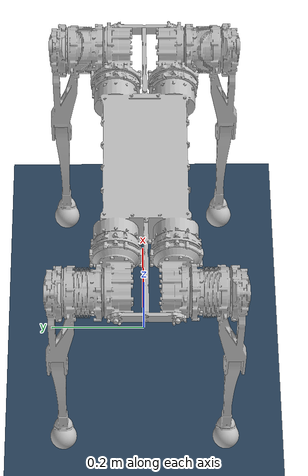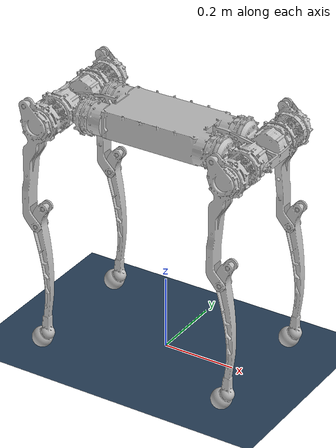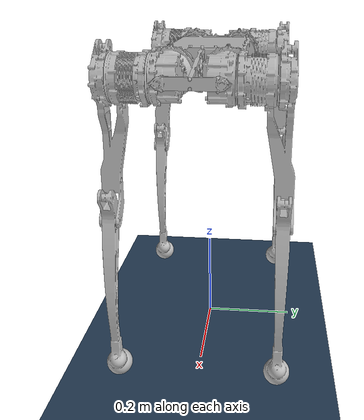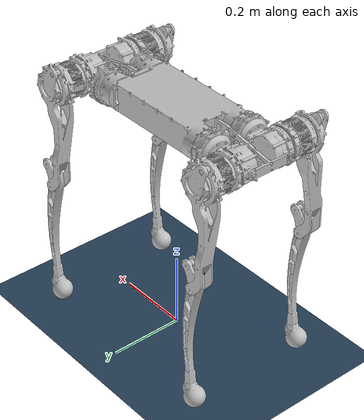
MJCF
<mujoco model="QuadIP">
  <compiler angle="radian" meshdir="meshes/" autolimits="true"/>
  <option timestep="0.001" tolerance="1e-06" cone="elliptic" jacobian="sparse" solver="CG" iterations="30"/>
  <default/>
  <asset>
    <texture type="skybox" builtin="gradient" rgb1=".3 .5 .7" rgb2="0 0 0" width="512" height="512"/>
    <texture name="grid" type="2d" builtin="checker" width="512" height="512" rgb1=".1 .2 .3" rgb2=".2 .3 .4"/>
    <material name="grid" texture="grid" texrepeat="1 1" texuniform="true" reflectance=".2"/>
  </asset>
  <asset>
    <mesh name="Base" file="Base.STL"/>
    <mesh name="FL_HP" file="FL_HP.STL"/>
    <mesh name="FL_Thigh" file="FL_Thigh.STL"/>
    <mesh name="FL_Calf" file="FL_Calf.STL"/>
    <mesh name="BL_HP" file="BL_HP.STL"/>
    <mesh name="BL_Thigh" file="BL_Thigh.STL"/>
    <mesh name="BL_Calf" file="BL_Calf.STL"/>
    <mesh name="FR_HP" file="FR_HP.STL"/>
    <mesh name="FR_Thigh" file="FR_Thigh.STL"/>
    <mesh name="FR_Calf" file="FR_Calf.STL"/>
    <mesh name="BR_HP" file="BR_HP.STL"/>
    <mesh name="BR_Thigh" file="BR_Thigh.STL"/>
    <mesh name="BR_Calf" file="BR_Calf.STL"/>
  </asset>

 <visual>
    <map force="0.1" zfar="30"/>
    <rgba haze="0.15 0.25 0.35 1"/>
    <global offwidth="2560" offheight="1440" elevation="-20" azimuth="120"/>
  </visual>

  <worldbody>
    <geom name="ground" size="10 10 .05" type="plane" material="grid" condim="3"/>
    <light dir=".2 1 -.4" diffuse=".8 .8 .8" specular="0.3 0.3 0.3" pos="-2 -10 4" cutoff="35"/>
    <light dir="-.2 1 -.4" diffuse=".8 .8 .8" specular="0.3 0.3 0.3" pos="2 -10 4" cutoff="35"/>

    <body name="Base" pos="0 0 0.642" gravcomp="0">
      <freejoint name="Base"/>
      <inertial pos="0.00407 -0.00053 -0.00159" quat="0 0.707107 0 0.707107" mass="8.29295" diaginertia="0.20885 0.1908 0.02567"/>
      <geom type="mesh" rgba="0.75294 0.75294 0.75294 1" mesh="Base"/>
      <body name="FL_HP" pos="0.27 0.055 0" gravcomp="0">
        <inertial pos="-0.00958 0.00664 0.00176" quat="0 0.707107 0 0.707107" mass="1.2615" diaginertia="0.00176 0.00166 0.00108"/>
        <joint name="1_FL_Roll" pos="0 0 0" axis="1 0 0" range="-1 1"/>
        <geom type="mesh" rgba="0.75294 0.75294 0.75294 1" mesh="FL_HP"/>
        <body name="FL_Thigh" pos="0 0.1142 0" gravcomp="0">
          <inertial pos="-0.0055 -0.02031 -0.03239" mass="2.3269" diaginertia="0.02004 0.01871 0.00366"/>
          <joint name="1_FL_Pitch" pos="0 0 0" axis="0 1 0" range="-3.14 3.14"/>
          <geom type="mesh" rgba="0.75294 0.75294 0.75294 1" mesh="FL_Thigh"/>
          <body name="FL_Calf" pos="0 0 -0.28" gravcomp="0">
            <inertial pos="0.01134 6e-05 -0.15434" quat="0.707107 0 0 0.707107" mass="0.56128" diaginertia="0.02632 0.0262 0.0002"/>
            <joint name="1_FL_Knee" pos="0 0 0" axis="0 1 0" range="-3.14 -0.17"/>
            <geom type="mesh" rgba="0.75294 0.75294 0.75294 1" mesh="FL_Calf"/>
          </body>
        </body>
      </body>
      <body name="BL_HP" pos="-0.27 0.055 0" gravcomp="0">
        <inertial pos="0.0096 0.0066 0.00016" quat="0 0.707107 0 0.707107" mass="1.259" diaginertia="0.00176 0.00165 0.00108"/>
        <joint name="2_BL_Roll" pos="0 0 0" axis="1 0 0" range="-1 1"/>
        <geom type="mesh" rgba="0.75294 0.75294 0.75294 1" mesh="BL_HP"/>
        <body name="BL_Thigh" pos="0 0.1142 0" gravcomp="0">
          <inertial pos="-0.0055 -0.02031 -0.03239" mass="2.3269" diaginertia="0.02004 0.01871 0.00366"/>
          <joint name="2_BL_Pitch" pos="0 0 0" axis="0 1 0" range="-3.14 3.14"/>
          <geom type="mesh" rgba="0.75294 0.75294 0.75294 1" mesh="BL_Thigh"/>
          <body name="BL_Calf" pos="0 0 -0.28" gravcomp="0">
            <inertial pos="0.01134 6e-05 -0.15434" quat="0.707107 0 0 0.707107" mass="0.56128" diaginertia="0.02632 0.0262 0.0002"/>
            <joint name="2_BL_Knee" pos="0 0 0" axis="0 1 0" range="-3.14 -0.17"/>
            <geom type="mesh" rgba="0.75294 0.75294 0.75294 1" mesh="BL_Calf"/>
          </body>
        </body>
      </body>
      <body name="FR_HP" pos="0.27 -0.055 0" gravcomp="0">
        <inertial pos="-0.0096 -0.0066 0.00016" quat="0 0.707107 0 0.707107" mass="1.259" diaginertia="0.00176 0.00165 0.00108"/>
        <joint name="3_FR_Roll" pos="0 0 0" axis="1 0 0" range="-1 1"/>
        <geom type="mesh" rgba="0.75294 0.75294 0.75294 1" mesh="FR_HP"/>
        <body name="FR_Thigh" pos="0 -0.1142 0" gravcomp="0">
          <inertial pos="-0.0055 0.02031 -0.03246" mass="2.32853" diaginertia="0.02004 0.01872 0.00366"/>
          <joint name="3_FR_Pitch" pos="0 0 0" axis="0 1 0" range="-3.14 3.14"/>
          <geom type="mesh" rgba="0.75294 0.75294 0.75294 1" mesh="FR_Thigh"/>
          <body name="FR_Calf" pos="0 0 -0.28" gravcomp="0">
            <inertial pos="0.01134 6e-05 -0.15434" quat="0.707107 0 0 0.707107" mass="0.56128" diaginertia="0.02632 0.0262 0.0002"/>
            <joint name="3_FR_Knee" pos="0 0 0" axis="0 1 0" range="-3.14 -0.17"/>
            <geom type="mesh" rgba="0.75294 0.75294 0.75294 1" mesh="FR_Calf"/>
          </body>
        </body>
      </body>
      <body name="BR_HP" pos="-0.27 -0.055 0" gravcomp="0">
        <inertial pos="0.00958 -0.00664 -5e-05" quat="0 0.707107 0 0.707107" mass="1.2615" diaginertia="0.00176 0.00166 0.00108"/>
        <joint name="4_BR_Roll" pos="0 0 0" axis="1 0 0" range="-1 1"/>
        <geom type="mesh" rgba="0.75294 0.75294 0.75294 1" mesh="BR_HP"/>
        <body name="BR_Thigh" pos="0 -0.1142 0" gravcomp="0">
          <inertial pos="-0.0055 0.02031 -0.03246" mass="2.32853" diaginertia="0.02004 0.01872 0.00366"/>
          <joint name="4_BR_Pitch" pos="0 0 0" axis="0 1 0" range="-3.14 3.14"/>
          <geom type="mesh" rgba="0.75294 0.75294 0.75294 1" mesh="BR_Thigh"/>
          <body name="BR_Calf" pos="0 0 -0.28" gravcomp="0">
            <inertial pos="0.01134 6e-05 -0.15434" quat="0.707107 0 0 0.707107" mass="0.56128" diaginertia="0.02632 0.0262 0.0002"/>
            <joint name="4_BR_Knee" pos="0 0 0" axis="0 1 0" range="-3.14 -0.17"/>
            <geom type="mesh" rgba="0.75294 0.75294 0.75294 1" mesh="BR_Calf"/>
          </body>
        </body>
      </body>
    </body>
  </worldbody>

  <contact>
    <exclude name="FL_1" body1="Base" body2="FL_HP"/>
    <exclude name="FL_2" body1="Base" body2="FL_Thigh"/>
    <exclude name="FL_3" body1="Base" body2="FL_Calf"/>
    <exclude name="FL_4" body1="FL_Thigh" body2="FL_Calf"/>

    <exclude name="BL_1" body1="Base" body2="BL_HP"/>
    <exclude name="BL_2" body1="Base" body2="BL_Thigh"/>
    <exclude name="BL_3" body1="Base" body2="BL_Calf"/>
    <exclude name="BL_4" body1="BL_Thigh" body2="BL_Calf"/>

    <exclude name="FR_1" body1="Base" body2="FR_HP"/>
    <exclude name="FR_2" body1="Base" body2="FR_Thigh"/>
    <exclude name="FR_3" body1="Base" body2="FL_Calf"/>
    <exclude name="FR_4" body1="FR_Thigh" body2="FR_Calf"/>

    <exclude name="BR_1" body1="Base" body2="BR_HP"/>
    <exclude name="BR_2" body1="Base" body2="BR_Thigh"/>
    <exclude name="BR_3" body1="Base" body2="FL_Calf"/>
    <exclude name="BR_4" body1="BR_Thigh" body2="BR_Calf"/>
  </contact>

  <actuator>
    <motor name="FL_Roll" gear="50" joint="1_FL_Roll" forcerange="-1.0 1.0"/>
    <motor name="FL_Pitch" gear="50" joint="1_FL_Pitch" forcerange="-1.0 1.0"/>
    <motor name="FL_Knee" gear="50" joint="1_FL_Knee" forcerange="-1.0 1.0"/>

    <motor name="BL_Roll" gear="50" joint="2_BL_Roll" forcerange="-1.0 1.0"/>
    <motor name="BL_Pitch" gear="50" joint="2_BL_Pitch" forcerange="-1.0 1.0"/>
    <motor name="BL_Knee" gear="50" joint="2_BL_Knee" forcerange="-1.0 1.0"/>

    <motor name="FR_Roll" gear="50" joint="3_FR_Roll" forcerange="-1.0 1.0"/>
    <motor name="FR_Pitch" gear="50" joint="3_FR_Pitch" forcerange="-1.0 1.0"/>
    <motor name="FR_Knee" gear="50" joint="3_FR_Knee" forcerange="-1.0 1.0"/>

    <motor name="BR_Roll" gear="50" joint="4_BR_Roll" forcerange="-1.0 1.0"/>
    <motor name="BR_Pitch" gear="50" joint="4_BR_Pitch" forcerange="-1.0 1.0"/>
    <motor name="BR_Knee" gear="50" joint="4_BR_Knee" forcerange="-1.0 1.0"/>
  </actuator>

</mujoco>
